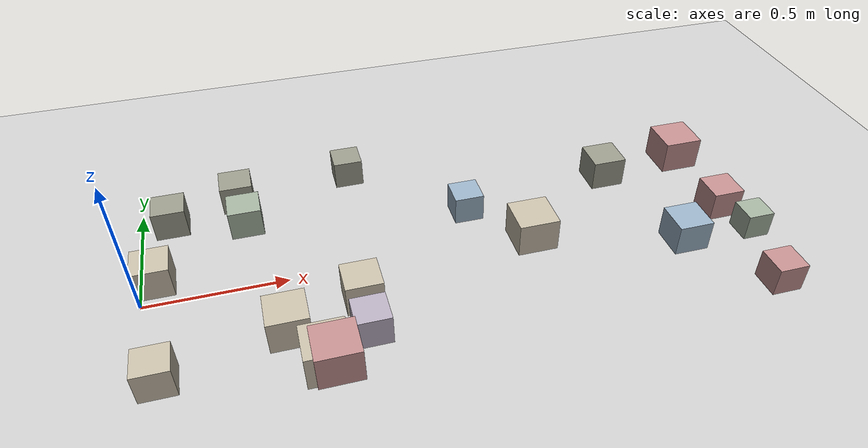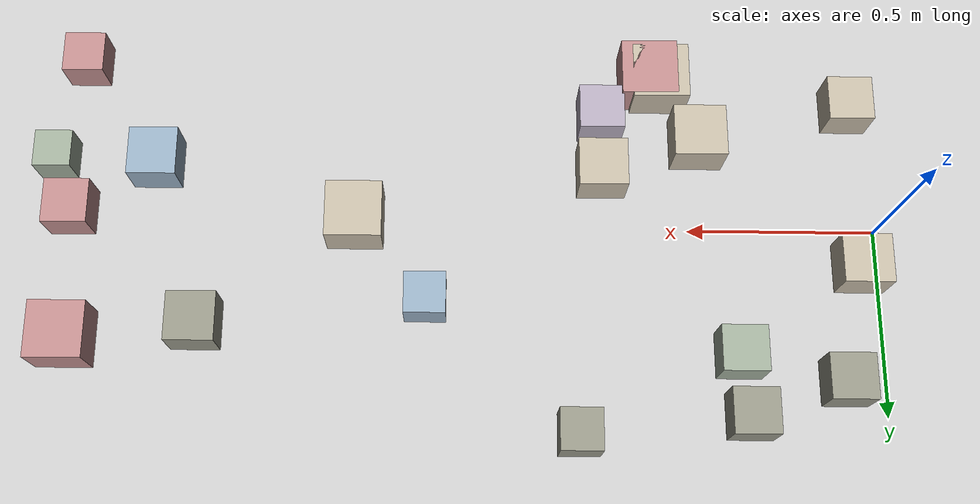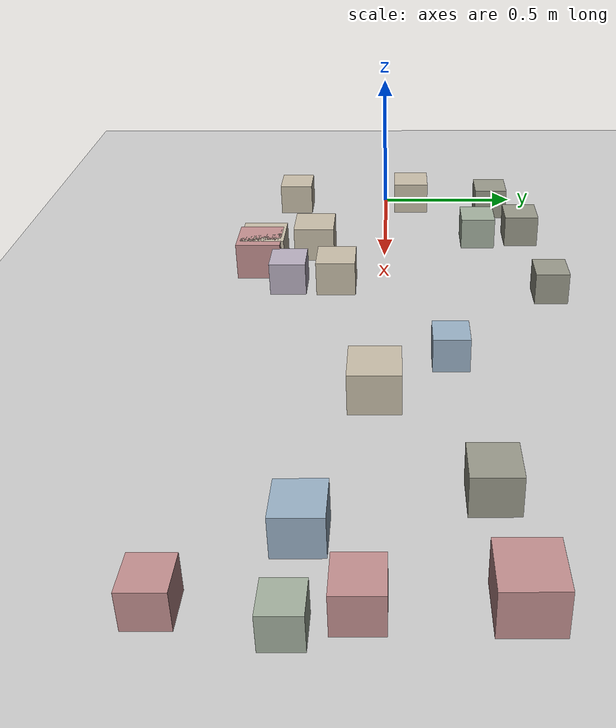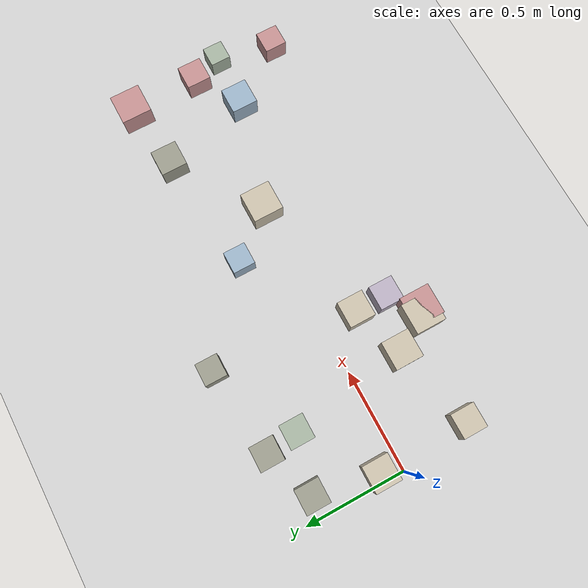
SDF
<sdf version="1.6">
 <world name="small_maze_world">
  <include><uri>model://ground_plane</uri></include>
  <include><uri>model://sun</uri></include>
  <model name="box_20">
   <static>false</static>
   <pose>0.6 -0.43 0.05 0 0 0</pose>
   <link name="link">
    <inertial>
     <mass>0.2</mass>
     <inertia><ixx>0.001</ixx><iyy>0.001</iyy><izz>0.001</izz><ixy>0</ixy><ixz>0</ixz><iyz>0</iyz></inertia>
    </inertial>
    <collision name="collision"><geometry><box><size>0.15 0.15 0.15</size></box></geometry></collision>
    <visual name="visual">
     <geometry><box><size>0.15 0.15 0.15</size></box></geometry>
     <material><ambient>0.76 0.56 0.56 1</ambient><diffuse>0.76 0.56 0.56 1</diffuse></material>
    </visual>
   </link>
  </model>
  <model name="box_24">
   <static>false</static>
   <pose>0.36 0.5 0.05 0 0 0</pose>
   <link name="link">
    <inertial>
     <mass>0.2</mass>
     <inertia><ixx>0.001</ixx><iyy>0.001</iyy><izz>0.001</izz><ixy>0</ixy><ixz>0</ixz><iyz>0</iyz></inertia>
    </inertial>
    <collision name="collision"><geometry><box><size>0.12 0.12 0.12</size></box></geometry></collision>
    <visual name="visual">
     <geometry><box><size>0.12 0.12 0.12</size></box></geometry>
     <material><ambient>0.6 0.6 0.54 1</ambient><diffuse>0.6 0.6 0.54 1</diffuse></material>
    </visual>
   </link>
  </model>
  <model name="box_40">
   <static>false</static>
   <pose>2.2 -0.19 0.05 0 0 0</pose>
   <link name="link">
    <inertial>
     <mass>0.2</mass>
     <inertia><ixx>0.001</ixx><iyy>0.001</iyy><izz>0.001</izz><ixy>0</ixy><ixz>0</ixz><iyz>0</iyz></inertia>
    </inertial>
    <collision name="collision"><geometry><box><size>0.1 0.1 0.1</size></box></geometry></collision>
    <visual name="visual">
     <geometry><box><size>0.1 0.1 0.1</size></box></geometry>
     <material><ambient>0.64 0.69 0.62 1</ambient><diffuse>0.64 0.69 0.62 1</diffuse></material>
    </visual>
   </link>
  </model>
  <model name="box_89">
   <static>false</static>
   <pose>0.05 0.1 0.05 0 0 0</pose>
   <link name="link">
    <inertial>
     <mass>0.2</mass>
     <inertia><ixx>0.001</ixx><iyy>0.001</iyy><izz>0.001</izz><ixy>0</ixy><ixz>0</ixz><iyz>0</iyz></inertia>
    </inertial>
    <collision name="collision"><geometry><box><size>0.13 0.13 0.13</size></box></geometry></collision>
    <visual name="visual">
     <geometry><box><size>0.13 0.13 0.13</size></box></geometry>
     <material><ambient>0.78 0.74 0.66 1</ambient><diffuse>0.78 0.74 0.66 1</diffuse></material>
    </visual>
   </link>
  </model>
  <model name="box_104">
   <static>false</static>
   <pose>2.14 -0.47 0.05 0 0 0</pose>
   <link name="link">
    <inertial>
     <mass>0.2</mass>
     <inertia><ixx>0.001</ixx><iyy>0.001</iyy><izz>0.001</izz><ixy>0</ixy><ixz>0</ixz><iyz>0</iyz></inertia>
    </inertial>
    <collision name="collision"><geometry><box><size>0.11 0.11 0.11</size></box></geometry></collision>
    <visual name="visual">
     <geometry><box><size>0.11 0.11 0.11</size></box></geometry>
     <material><ambient>0.76 0.56 0.56 1</ambient><diffuse>0.76 0.56 0.56 1</diffuse></material>
    </visual>
   </link>
  </model>
  <model name="box_114">
   <static>false</static>
   <pose>1.93 -0.18 0.05 0 0 0</pose>
   <link name="link">
    <inertial>
     <mass>0.2</mass>
     <inertia><ixx>0.001</ixx><iyy>0.001</iyy><izz>0.001</izz><ixy>0</ixy><ixz>0</ixz><iyz>0</iyz></inertia>
    </inertial>
    <collision name="collision"><geometry><box><size>0.13 0.13 0.13</size></box></geometry></collision>
    <visual name="visual">
     <geometry><box><size>0.13 0.13 0.13</size></box></geometry>
     <material><ambient>0.6 0.69 0.77 1</ambient><diffuse>0.6 0.69 0.77 1</diffuse></material>
    </visual>
   </link>
  </model>
  <model name="box_117">
   <static>false</static>
   <pose>0.11 0.41 0.05 0 0 0</pose>
   <link name="link">
    <inertial>
     <mass>0.2</mass>
     <inertia><ixx>0.001</ixx><iyy>0.001</iyy><izz>0.001</izz><ixy>0</ixy><ixz>0</ixz><iyz>0</iyz></inertia>
    </inertial>
    <collision name="collision"><geometry><box><size>0.12 0.12 0.12</size></box></geometry></collision>
    <visual name="visual">
     <geometry><box><size>0.12 0.12 0.12</size></box></geometry>
     <material><ambient>0.6 0.6 0.54 1</ambient><diffuse>0.6 0.6 0.54 1</diffuse></material>
    </visual>
   </link>
  </model>
  <model name="box_140">
   <static>false</static>
   <pose>1.39 -0.02 0.05 0 0 0</pose>
   <link name="link">
    <inertial>
     <mass>0.2</mass>
     <inertia><ixx>0.001</ixx><iyy>0.001</iyy><izz>0.001</izz><ixy>0</ixy><ixz>0</ixz><iyz>0</iyz></inertia>
    </inertial>
    <collision name="collision"><geometry><box><size>0.15 0.15 0.15</size></box></geometry></collision>
    <visual name="visual">
     <geometry><box><size>0.15 0.15 0.15</size></box></geometry>
     <material><ambient>0.78 0.74 0.66 1</ambient><diffuse>0.78 0.74 0.66 1</diffuse></material>
    </visual>
   </link>
  </model>
  <model name="box_167">
   <static>false</static>
   <pose>0.8 0.55 0.05 0 0 0</pose>
   <link name="link">
    <inertial>
     <mass>0.2</mass>
     <inertia><ixx>0.001</ixx><iyy>0.001</iyy><izz>0.001</izz><ixy>0</ixy><ixz>0</ixz><iyz>0</iyz></inertia>
    </inertial>
    <collision name="collision"><geometry><box><size>0.11 0.11 0.11</size></box></geometry></collision>
    <visual name="visual">
     <geometry><box><size>0.11 0.11 0.11</size></box></geometry>
     <material><ambient>0.6 0.6 0.54 1</ambient><diffuse>0.6 0.6 0.54 1</diffuse></material>
    </visual>
   </link>
  </model>
  <model name="box_214">
   <static>false</static>
   <pose>0.57 -0.42 0.05 0 0 0</pose>
   <link name="link">
    <inertial>
     <mass>0.2</mass>
     <inertia><ixx>0.001</ixx><iyy>0.001</iyy><izz>0.001</izz><ixy>0</ixy><ixz>0</ixz><iyz>0</iyz></inertia>
    </inertial>
    <collision name="collision"><geometry><box><size>0.15 0.15 0.15</size></box></geometry></collision>
    <visual name="visual">
     <geometry><box><size>0.15 0.15 0.15</size></box></geometry>
     <material><ambient>0.78 0.74 0.66 1</ambient><diffuse>0.78 0.74 0.66 1</diffuse></material>
    </visual>
   </link>
  </model>
  <model name="box_227">
   <static>false</static>
   <pose>1.8 0.27 0.05 0 0 0</pose>
   <link name="link">
    <inertial>
     <mass>0.2</mass>
     <inertia><ixx>0.001</ixx><iyy>0.001</iyy><izz>0.001</izz><ixy>0</ixy><ixz>0</ixz><iyz>0</iyz></inertia>
    </inertial>
    <collision name="collision"><geometry><box><size>0.13 0.13 0.13</size></box></geometry></collision>
    <visual name="visual">
     <geometry><box><size>0.13 0.13 0.13</size></box></geometry>
     <material><ambient>0.6 0.6 0.54 1</ambient><diffuse>0.6 0.6 0.54 1</diffuse></material>
    </visual>
   </link>
  </model>
  <model name="box_260">
   <static>false</static>
   <pose>0.47 -0.25 0.05 0 0 0</pose>
   <link name="link">
    <inertial>
     <mass>0.2</mass>
     <inertia><ixx>0.001</ixx><iyy>0.001</iyy><izz>0.001</izz><ixy>0</ixy><ixz>0</ixz><iyz>0</iyz></inertia>
    </inertial>
    <collision name="collision"><geometry><box><size>0.14 0.14 0.14</size></box></geometry></collision>
    <visual name="visual">
     <geometry><box><size>0.14 0.14 0.14</size></box></geometry>
     <material><ambient>0.78 0.74 0.66 1</ambient><diffuse>0.78 0.74 0.66 1</diffuse></material>
    </visual>
   </link>
  </model>
  <model name="box_275">
   <static>false</static>
   <pose>1.2 0.2 0.05 0 0 0</pose>
   <link name="link">
    <inertial>
     <mass>0.2</mass>
     <inertia><ixx>0.001</ixx><iyy>0.001</iyy><izz>0.001</izz><ixy>0</ixy><ixz>0</ixz><iyz>0</iyz></inertia>
    </inertial>
    <collision name="collision"><geometry><box><size>0.11 0.11 0.11</size></box></geometry></collision>
    <visual name="visual">
     <geometry><box><size>0.11 0.11 0.11</size></box></geometry>
     <material><ambient>0.6 0.69 0.77 1</ambient><diffuse>0.6 0.69 0.77 1</diffuse></material>
    </visual>
   </link>
  </model>
  <model name="box_287">
   <static>false</static>
   <pose>0.73 -0.32 0.05 0 0 0</pose>
   <link name="link">
    <inertial>
     <mass>0.2</mass>
     <inertia><ixx>0.001</ixx><iyy>0.001</iyy><izz>0.001</izz><ixy>0</ixy><ixz>0</ixz><iyz>0</iyz></inertia>
    </inertial>
    <collision name="collision"><geometry><box><size>0.12 0.12 0.12</size></box></geometry></collision>
    <visual name="visual">
     <geometry><box><size>0.12 0.12 0.12</size></box></geometry>
     <material><ambient>0.72 0.68 0.75 1</ambient><diffuse>0.72 0.68 0.75 1</diffuse></material>
    </visual>
   </link>
  </model>
  <model name="box_291">
   <static>false</static>
   <pose>0.73 -0.16 0.05 0 0 0</pose>
   <link name="link">
    <inertial>
     <mass>0.2</mass>
     <inertia><ixx>0.001</ixx><iyy>0.001</iyy><izz>0.001</izz><ixy>0</ixy><ixz>0</ixz><iyz>0</iyz></inertia>
    </inertial>
    <collision name="collision"><geometry><box><size>0.13 0.13 0.13</size></box></geometry></collision>
    <visual name="visual">
     <geometry><box><size>0.13 0.13 0.13</size></box></geometry>
     <material><ambient>0.78 0.74 0.66 1</ambient><diffuse>0.78 0.74 0.66 1</diffuse></material>
    </visual>
   </link>
  </model>
  <model name="box_309">
   <static>false</static>
   <pose>2.14 0.31 0.05 0 0 0</pose>
   <link name="link">
    <inertial>
     <mass>0.2</mass>
     <inertia><ixx>0.001</ixx><iyy>0.001</iyy><izz>0.001</izz><ixy>0</ixy><ixz>0</ixz><iyz>0</iyz></inertia>
    </inertial>
    <collision name="collision"><geometry><box><size>0.15 0.15 0.15</size></box></geometry></collision>
    <visual name="visual">
     <geometry><box><size>0.15 0.15 0.15</size></box></geometry>
     <material><ambient>0.76 0.56 0.56 1</ambient><diffuse>0.76 0.56 0.56 1</diffuse></material>
    </visual>
   </link>
  </model>
  <model name="box_403">
   <static>false</static>
   <pose>0.06 -0.35 0.05 0 0 0</pose>
   <link name="link">
    <inertial>
     <mass>0.2</mass>
     <inertia><ixx>0.001</ixx><iyy>0.001</iyy><izz>0.001</izz><ixy>0</ixy><ixz>0</ixz><iyz>0</iyz></inertia>
    </inertial>
    <collision name="collision"><geometry><box><size>0.12 0.12 0.12</size></box></geometry></collision>
    <visual name="visual">
     <geometry><box><size>0.12 0.12 0.12</size></box></geometry>
     <material><ambient>0.78 0.74 0.66 1</ambient><diffuse>0.78 0.74 0.66 1</diffuse></material>
    </visual>
   </link>
  </model>
  <model name="box_414">
   <static>false</static>
   <pose>0.38 0.34 0.05 0 0 0</pose>
   <link name="link">
    <inertial>
     <mass>0.2</mass>
     <inertia><ixx>0.001</ixx><iyy>0.001</iyy><izz>0.001</izz><ixy>0</ixy><ixz>0</ixz><iyz>0</iyz></inertia>
    </inertial>
    <collision name="collision"><geometry><box><size>0.12 0.12 0.12</size></box></geometry></collision>
    <visual name="visual">
     <geometry><box><size>0.12 0.12 0.12</size></box></geometry>
     <material><ambient>0.64 0.69 0.62 1</ambient><diffuse>0.64 0.69 0.62 1</diffuse></material>
    </visual>
   </link>
  </model>
  <model name="box_445">
   <static>false</static>
   <pose>2.15 -0.04 0.05 0 0 0</pose>
   <link name="link">
    <inertial>
     <mass>0.2</mass>
     <inertia><ixx>0.001</ixx><iyy>0.001</iyy><izz>0.001</izz><ixy>0</ixy><ixz>0</ixz><iyz>0</iyz></inertia>
    </inertial>
    <collision name="collision"><geometry><box><size>0.12 0.12 0.12</size></box></geometry></collision>
    <visual name="visual">
     <geometry><box><size>0.12 0.12 0.12</size></box></geometry>
     <material><ambient>0.76 0.56 0.56 1</ambient><diffuse>0.76 0.56 0.56 1</diffuse></material>
    </visual>
   </link>
  </model>
 </world>
</sdf>
